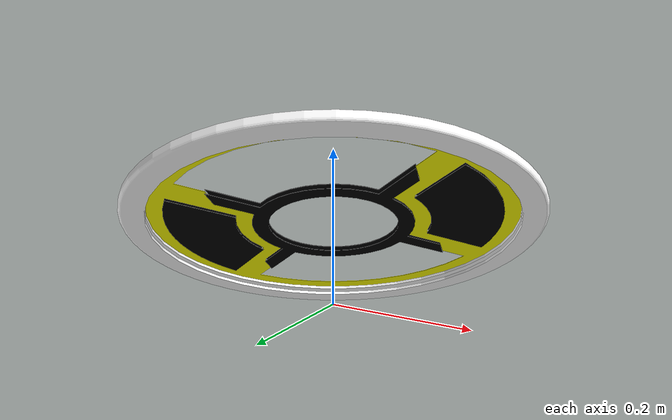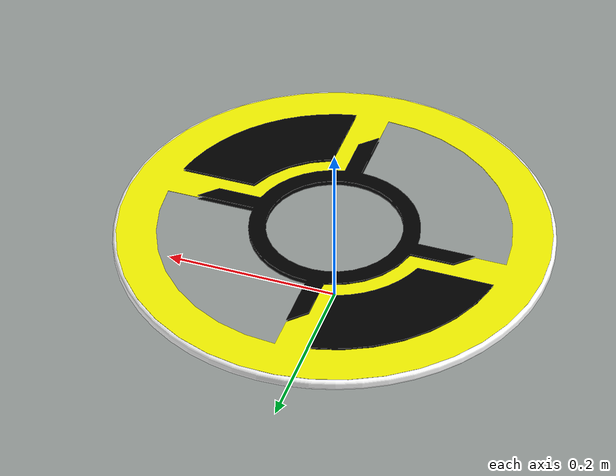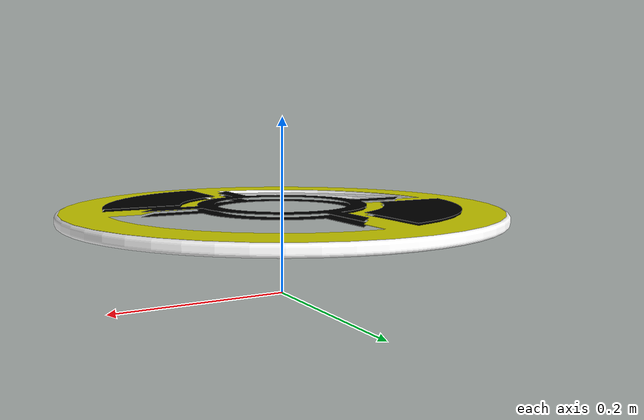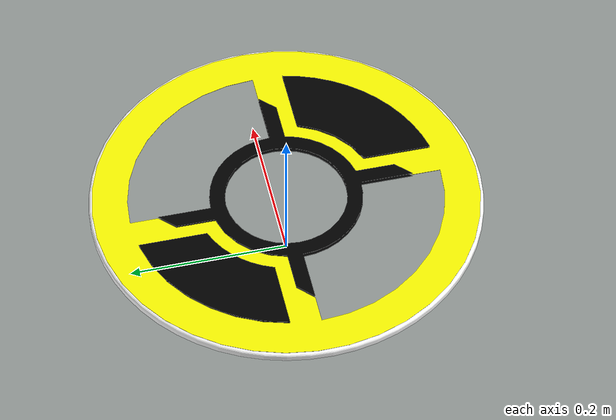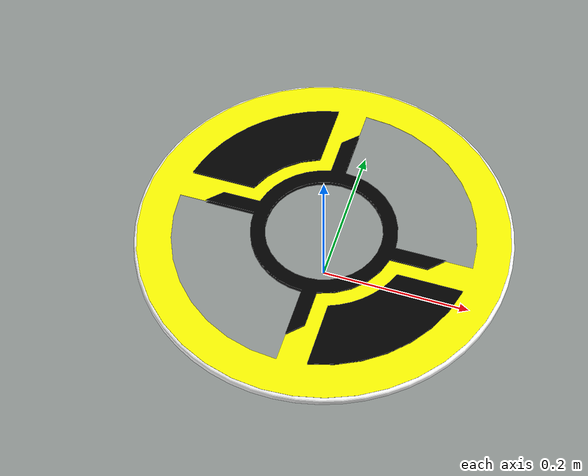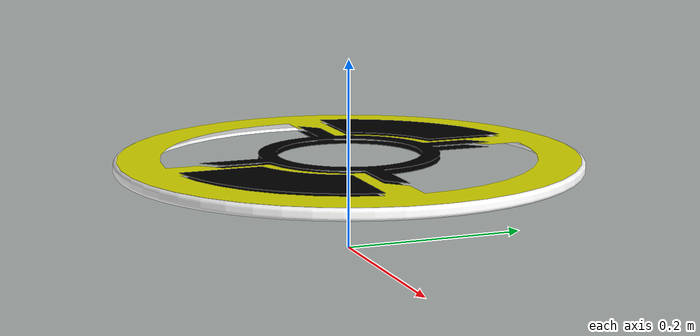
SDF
<?xml version="1.0" encoding="utf-8"?>
<sdf version="1.5">
  <model name="HatchPlate">
    <pose>0 0 0.1 0 0 0</pose>
    <link name="SolidBody">
      <gravity>1</gravity>
      <self_collide>0</self_collide>
      <pose>1.50910266823874E-05 -7.28819896917834E-06 -0.006191249999999 1.5707963267949 0 0.785398163397447</pose>
      <must_be_base_link>1</must_be_base_link>
      <velocity_decay>
        <linear>0</linear>
        <angular>0</angular>
      </velocity_decay>
      <inertial>
        <mass>0.336286578442346</mass>
        <pose>0 0 0 0 0 0</pose>
        <inertia>
          <ixx>0.1</ixx>
          <ixy>0</ixy>
          <ixz>0</ixz>
          <iyy>0.1</iyy>
          <iyz>0</iyz>
          <izz>0.1</izz>
        </inertia>
      </inertial>
      <collision name="SolidBody_collision">
        <pose>1.48876753119964E-14 -1.00877262763999E-15 7.82172200365959E-06 0 0 0</pose>
        <geometry>
          <mesh>
            <scale>1 1 1</scale>
            <uri>model://HatchPlate/meshes/SolidBody_col.STL</uri>
          </mesh>
        </geometry>
        <surface>
          <contact>
            <ode>
              <max_vel>0</max_vel>
              <kp>1000000</kp>
              <kd>10</kd>
            </ode>
          </contact>
          <friction>
            <ode>
              <mu>1</mu>
              <mu2>1</mu2>
            </ode>
          </friction>
        </surface>
      </collision>
      <visual name="SolidBody_visual">
        <pose>1.48876753119964E-14 -1.00877262763999E-15 7.82172200365959E-06 0 0 0</pose>
        <material>
          <ambient>1 1 1 1</ambient>
          <diffuse>1 1 1 1</diffuse>
        </material>
        <geometry>
          <mesh>
            <scale>1 1 1</scale>
            <uri>model://HatchPlate/meshes/SolidBody.STL</uri>
          </mesh>
        </geometry>
      </visual>
    </link>
    <link name="Yellow">
      <gravity>1</gravity>
      <self_collide>0</self_collide>
      <pose>0 0 0 1.5707963267949 0 0.785398163397447</pose>
      <must_be_base_link>0</must_be_base_link>
      <velocity_decay>
        <linear>0</linear>
        <angular>0</angular>
      </velocity_decay>
      <inertial>
        <mass>0.0378968589743794</mass>
        <pose>0 0 0 0 0 0</pose>
        <inertia>
          <ixx>0</ixx>
          <ixy>0</ixy>
          <ixz>0</ixz>
          <iyy>0</iyy>
          <iyz>0</iyz>
          <izz>0</izz>
        </inertia>
      </inertial>
      <visual name="Yellow_visual">
        <pose>-8.36928923624013E-17 0.00263125 -5.35264701322021E-17 0 0 0</pose>
        <material>
          <ambient>1 1 0 1</ambient>
          <diffuse>1 1 0 1</diffuse>
        </material>
        <geometry>
          <mesh>
            <scale>1 1 1</scale>
            <uri>model://HatchPlate/meshes/Yellow.STL</uri>
          </mesh>
        </geometry>
      </visual>
    </link>
    <joint name="SolidBody-Yellow" type="fixed">
      <parent>SolidBody</parent>
      <child>Yellow</child>
      <pose>-8.36928923624013E-17 1.73472347597681E-18 -5.35264701322021E-17 0 0 0</pose>
    </joint>
    <link name="Black">
      <gravity>1</gravity>
      <self_collide>0</self_collide>
      <pose>0 0 0 1.57 0 0.785</pose>
      <must_be_base_link>0</must_be_base_link>
      <velocity_decay>
        <linear>0</linear>
        <angular>0</angular>
      </velocity_decay>
      <inertial>
        <mass>0.0142280242450847</mass>
        <pose>-7.03201753117938E-17 -0.00263125 0.0742817950459665 0 0 0</pose>
        <inertia>
          <ixx>0</ixx>
          <ixy>0</ixy>
          <ixz>0</ixz>
          <iyy>0</iyy>
          <iyz>0</iyz>
          <izz>0</izz>
        </inertia>
      </inertial>
      <visual name="Black_visual">
        <pose>0 0 0 0 0 0</pose>
        <material>
          <ambient>0 0 0 1</ambient>
          <diffuse>0 0 0 1</diffuse>
        </material>
        <geometry>
          <mesh>
            <scale>1 1 1</scale>
            <uri>model://HatchPlate/meshes/Black_col.STL</uri>
          </mesh>
        </geometry>
      </visual>
    </link>
    <joint name="SolidBody-Black" type="fixed">
      <parent>SolidBody</parent>
      <child>Black</child>
      <pose>0 -0.00263125 0 0 0 0</pose>
    </joint>
  </model>
</sdf>
